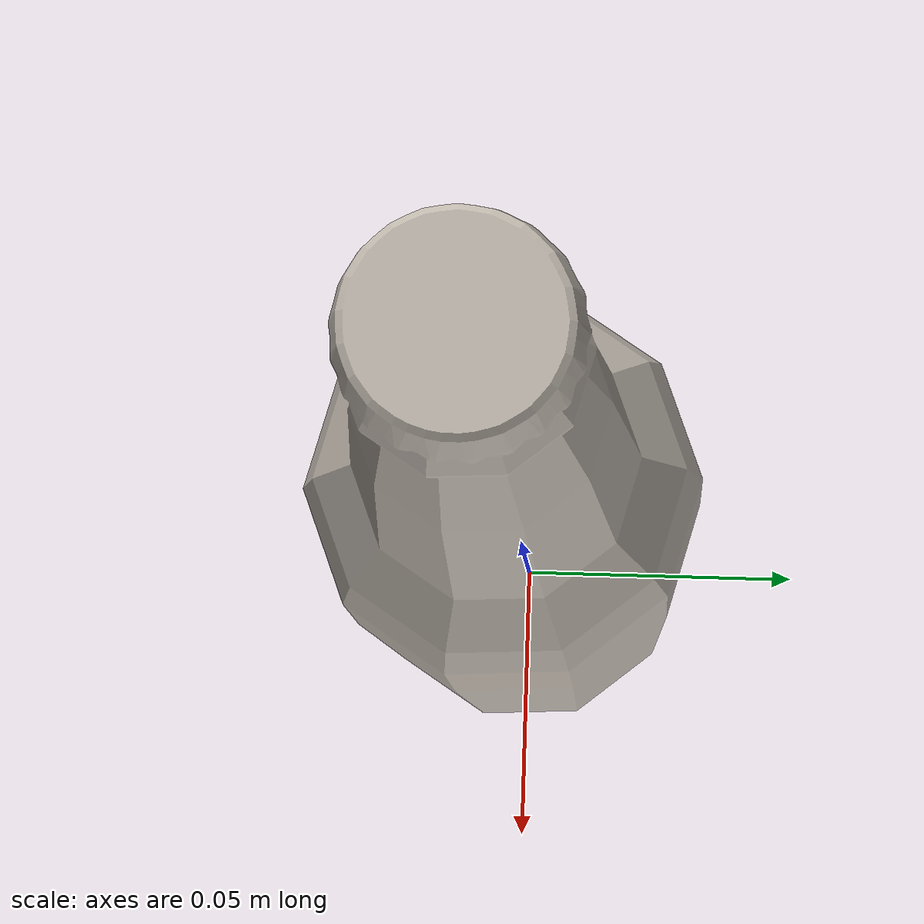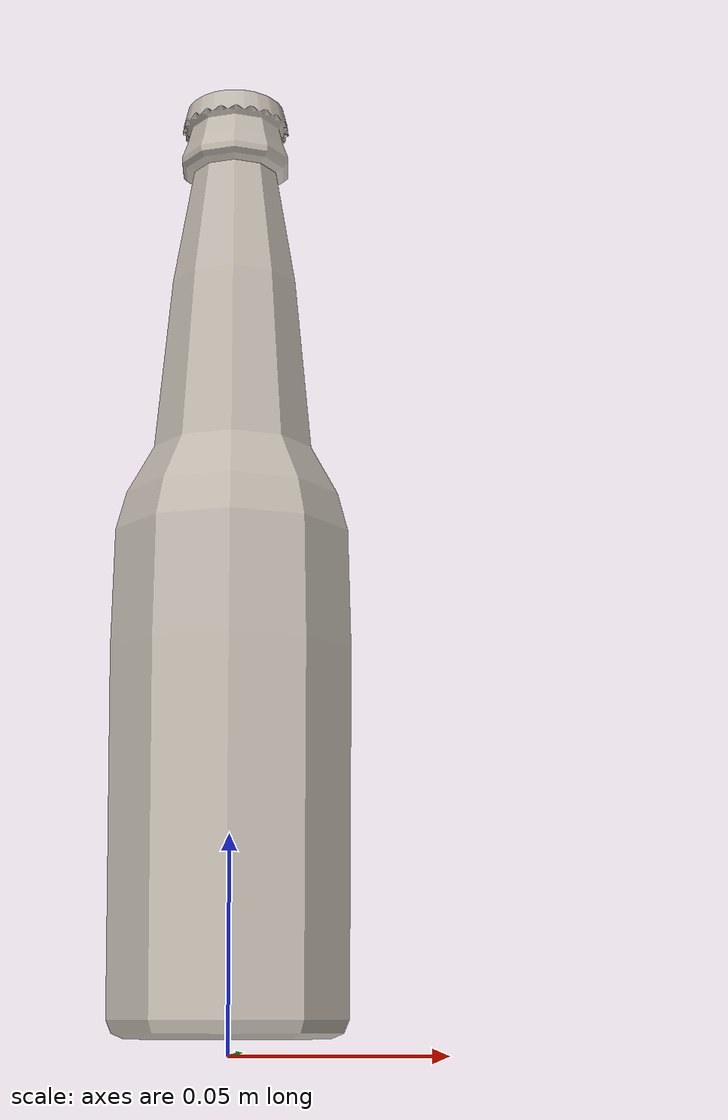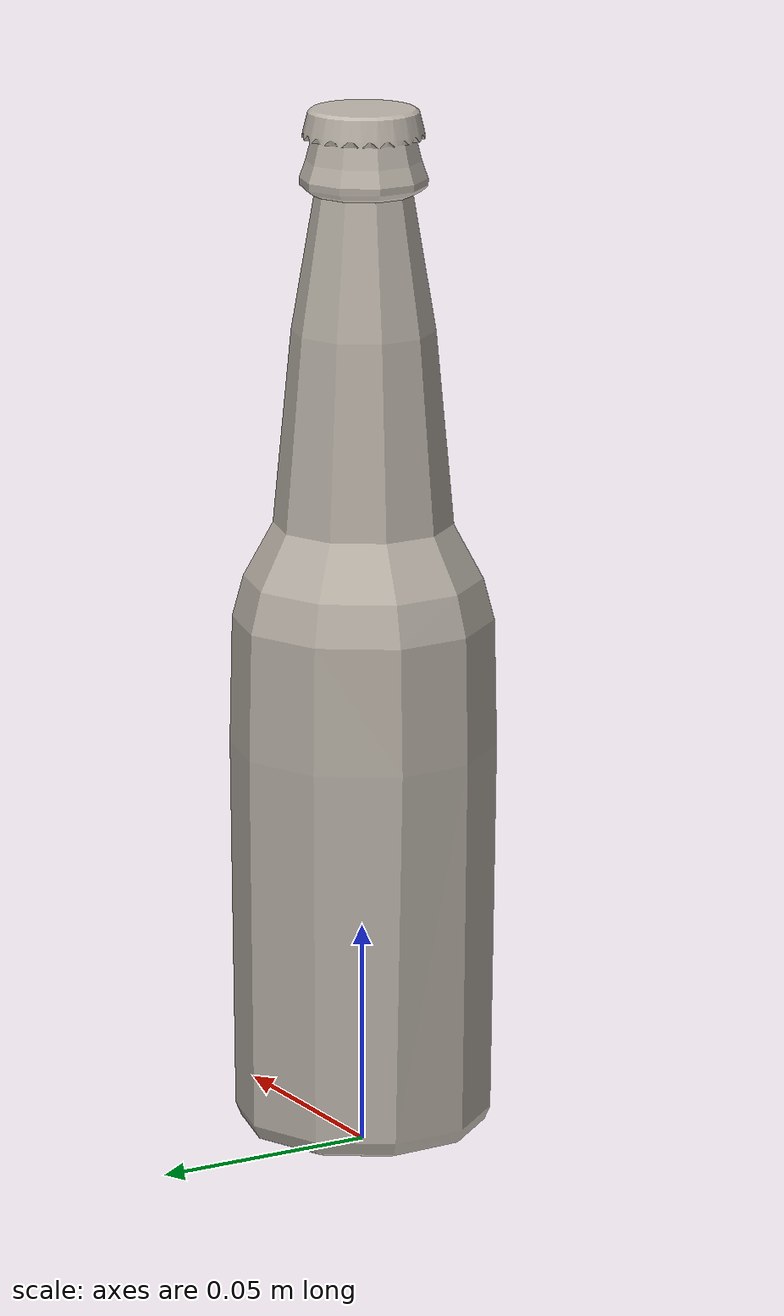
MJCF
<?xml version="1.0" encoding="utf-8"?>
<mujoco model="beer">
  <compiler angle="radian" meshdir="assets" texturedir="assets" autolimits="true"/>
  <asset>
    <mesh file="beer.obj"/>
    <texture type="2d" name="beer" file="beer.png"/>
    <material name="beer" specular="1" shininess="1" texture="beer"/>
  </asset>
  <default>
    <default class="beer">
      <geom type="mesh" mass="0.5" solimp="0.95 0.98 0.001" solref="0.004 1"/>
      <default class="balance">
        <geom group="3" type="sphere" mass="0.1" size="0.01" pos="0 0 -0.02" contype="0" conaffinity="0"/>
      </default>
    </default>
  </default>
  <worldbody>
    <body name="beer" childclass="beer">
      <geom name="beer" mesh="beer" material="beer" euler="1.5708 0 0"/>
      <geom class="balance"/>
    </body>
  </worldbody>
</mujoco>
